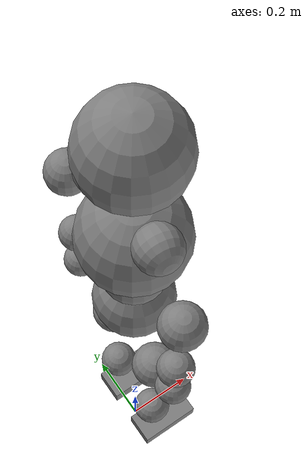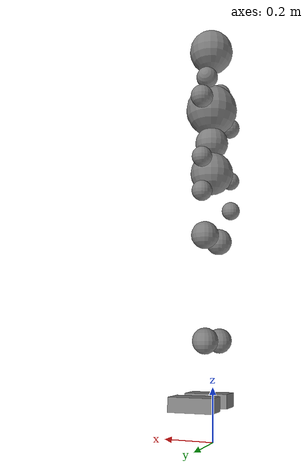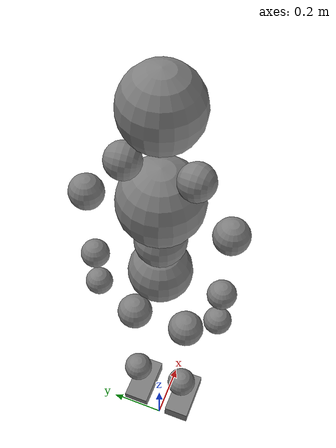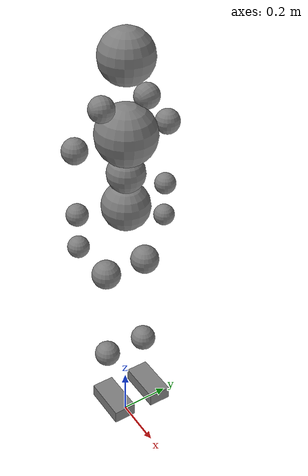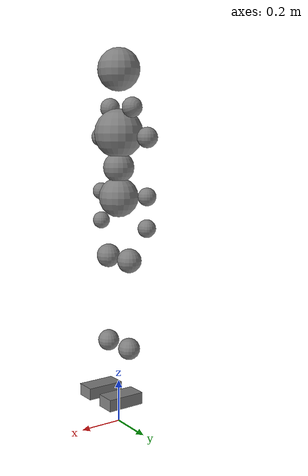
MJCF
<mujoco model="humanoid">
  <worldbody>
    <body name="pelvis" pos="0 0 1">
      <freejoint name="root"/>
      <geom name="pelvis" type="sphere" pos="0 0 0.07" size="0.09" density="2226"/>
      <geom name="upper_waist" type="sphere" pos="0 0 0.205" size="0.07" density="2226"/>

      <body name="torso" pos="0 0 0.236151">
        <joint name="abdomen_x" type="hinge" pos="0 0 0" axis="1 0 0" range="-60 60"/>
        <joint name="abdomen_y" type="hinge" pos="0 0 0" axis="0 1 0" range="-60 90"/>
        <joint name="abdomen_z" type="hinge" pos="0 0 0" axis="0 0 1" range="-50 50"/>
        <geom name="torso" type="sphere" pos="0 0 0.12" size="0.11" density="1794"/>
        <geom name="right_clavicle" fromto="-0.0060125 -0.0457775 0.2287955 -0.016835 -0.128177 0.2376182" size="0.045" density="1100"/>
        <geom name="left_clavicle" fromto="-0.0060125 0.0457775 0.2287955 -0.016835 0.128177 0.2376182" size="0.045" density="1100"/>

        <body name="head" pos="0 0 0.223894">
          <joint name="neck_x" type="hinge" axis="1 0 0" range="-50 50"/>
          <joint name="neck_y" type="hinge" axis="0 1 0" range="-40 60"/>
          <joint name="neck_z" type="hinge" axis="0 0 1" range="-45 45"/>
          <geom name="head" type="sphere" pos="0 0 0.175" size="0.095" density="1081"/>
        </body>

        <body name="right_upper_arm" pos="-0.02405 -0.18311 0.24350">
          <joint name="right_shoulder_x" type="hinge" axis="1 0 0" range="-180 45"/>
          <joint name="right_shoulder_y" type="hinge" axis="0 1 0" range="-180 60"/>
          <joint name="right_shoulder_z" type="hinge" axis="0 0 1" range="-90 90"/>
          <geom name="right_upper_arm" fromto="0 0 -0.05 0 0 -0.23" size="0.045" density="982"/>
          <body name="right_lower_arm" pos="0 0 -0.274788">
            <joint name="right_elbow" type="hinge" axis="0 1 0" range="-160 0"/>
            <geom name="right_lower_arm" fromto="0 0 -0.0525 0 0 -0.1875" size="0.04" density="1056"/>
            <body name="right_hand" pos="0 0 -0.258947">
              <geom name="right_hand" type="sphere" size="0.04" density="1865"/>
            </body>
          </body>
        </body>

        <body name="left_upper_arm" pos="-0.02405 0.18311 0.24350">
          <joint name="left_shoulder_x" type="hinge" axis="1 0 0" range="-45 180"/>
          <joint name="left_shoulder_y" type="hinge" axis="0 1 0" range="-180 60"/>
          <joint name="left_shoulder_z" type="hinge" axis="0 0 1" range="-90 90"/>
          <geom name="left_upper_arm" fromto="0 0 -0.05 0 0 -0.23" size="0.045" density="982"/>
          <body name="left_lower_arm" pos="0 0 -0.274788">
            <joint name="left_elbow" type="hinge" axis="0 1 0" range="-160 0"/>
            <geom name="left_lower_arm" fromto="0 0 -0.0525 0 0 -0.1875" size="0.04" density="1056"/>
            <body name="left_hand" pos="0 0 -0.258947">
              <geom name="left_hand" type="sphere" size="0.04" density="1865"/>
            </body>
          </body>
        </body>
      </body>

      <body name="right_thigh" pos="0 -0.084887 0">
        <joint name="right_hip_x" type="hinge" axis="1 0 0" range="-60 15"/>
        <joint name="right_hip_y" type="hinge" axis="0 1 0" range="-140 60"/>
        <joint name="right_hip_z" type="hinge" axis="0 0 1" range="-60 35"/>
        <geom name="right_thigh" fromto="0 0 -0.06 0 0 -0.36" size="0.055" density="1269"/>
        <body name="right_shin" pos="0 0 -0.421546">
          <joint name="right_knee" type="hinge" pos="0 0 0" axis="0 1 0" range="0 160"/>
          <geom name="right_shin" fromto="0 0 -0.045 0 0 -0.355" size="0.05" density="1014"/>
          <body name="right_foot" pos="0 0 -0.409870">
            <joint name="right_ankle_x" type="hinge" pos="0 0 0" axis="1 0 0" range="-30 30"/>
            <joint name="right_ankle_y" type="hinge" pos="0 0 0" axis="0 1 0" range="-55 55"/>
            <joint name="right_ankle_z" type="hinge" pos="0 0 0" axis="0 0 1" range="-40 40"/>
            <geom name="right_foot" type="box" pos="0.045 0 -0.0225" size="0.0885 0.045 0.0275" density="1141"/>
          </body>
        </body>
      </body>

      <body name="left_thigh" pos="0 0.084887 0">
        <joint name="left_hip_x" type="hinge" axis="1 0 0" range="-15 60"/>
        <joint name="left_hip_y" type="hinge" axis="0 1 0" range="-140 60"/>
        <joint name="left_hip_z" type="hinge" axis="0 0 1" range="-35 60"/>
        <geom name="left_thigh" fromto="0 0 -0.06 0 0 -0.36" size="0.055" density="1269"/>
        <body name="left_shin" pos="0 0 -0.421546">
          <joint name="left_knee" type="hinge" pos="0 0 0" axis="0 1 0" range="0 160"/>
          <geom name="left_shin" fromto="0 0 -0.045 0 0 -0.355" size="0.05" density="1014"/>
          <body name="left_foot" pos="0 0 -0.409870">
            <joint name="left_ankle_x" type="hinge" pos="0 0 0" axis="1 0 0" range="-30 30"/>
            <joint name="left_ankle_y" type="hinge" pos="0 0 0" axis="0 1 0" range="-55 55"/>
            <joint name="left_ankle_z" type="hinge" pos="0 0 0" axis="0 0 1" range="-40 40"/>
            <geom name="left_foot" type="box" pos="0.045 0 -0.0225" size="0.0885 0.045 0.0275" density="1141"/>
          </body>
        </body>
      </body>
    </body>
  </worldbody>
</mujoco>
